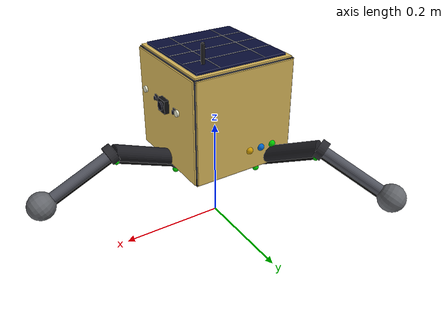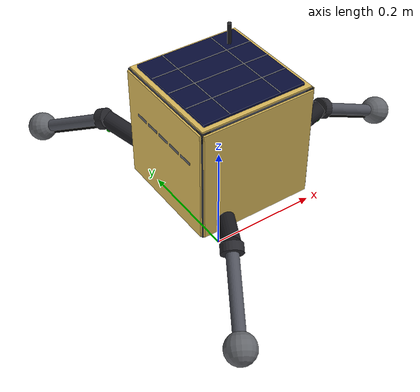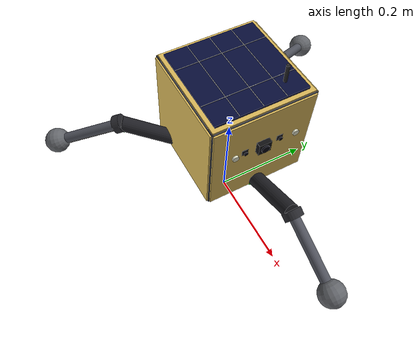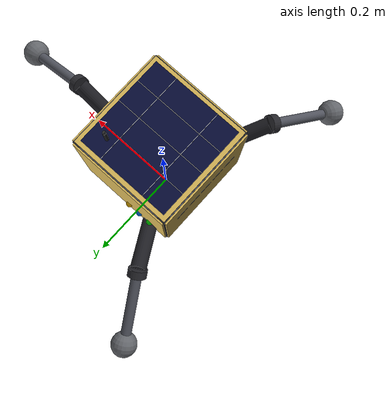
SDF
<sdf version="1.8">
 <model name="spacehopper">
  <allow_auto_disable>false</allow_auto_disable>
  <link name="base_link">
   <pose>0 0 0.25 0 0 0</pose>
   <inertial>
    <mass>1.35</mass>
    <inertia>
     <ixx>0.009000</ixx>
     <ixy>0</ixy>
     <ixz>0</ixz>
     <iyy>0.009000</iyy>
     <iyz>0</iyz>
     <izz>0.009000</izz>
    </inertia>
   </inertial>
   <visual name="hull_visual">
    <geometry><box><size>0.2 0.2 0.2</size></box></geometry>
    <material>
     <ambient>0.3 0.31 0.35 1</ambient>
     <diffuse>0.3 0.31 0.35 1</diffuse>
     <specular>0.5 0.5 0.5 1</specular>
     <pbr><metal><metalness>0.75</metalness><roughness>0.28</roughness></metal></pbr>
    </material>
   </visual>
   <visual name="seam_front">
    <pose>0.0995 0 0.02 0 0 0</pose>
    <geometry><box><size>0.001 0.196 0.003</size></box></geometry>
    <material>
     <ambient>0.04 0.04 0.045 1</ambient>
     <diffuse>0.04 0.04 0.045 1</diffuse>
     <specular>0.5 0.5 0.5 1</specular>
     <pbr><metal><metalness>0.3</metalness><roughness>0.85</roughness></metal></pbr>
    </material>
   </visual>
   <visual name="seam_back">
    <pose>-0.0995 0 0.02 0 0 0</pose>
    <geometry><box><size>0.001 0.196 0.003</size></box></geometry>
    <material>
     <ambient>0.04 0.04 0.045 1</ambient>
     <diffuse>0.04 0.04 0.045 1</diffuse>
     <specular>0.5 0.5 0.5 1</specular>
     <pbr><metal><metalness>0.3</metalness><roughness>0.85</roughness></metal></pbr>
    </material>
   </visual>
   <visual name="seam_left">
    <pose>0 0.0995 0.02 0 0 0</pose>
    <geometry><box><size>0.196 0.001 0.003</size></box></geometry>
    <material>
     <ambient>0.04 0.04 0.045 1</ambient>
     <diffuse>0.04 0.04 0.045 1</diffuse>
     <specular>0.5 0.5 0.5 1</specular>
     <pbr><metal><metalness>0.3</metalness><roughness>0.85</roughness></metal></pbr>
    </material>
   </visual>
   <visual name="seam_right">
    <pose>0 -0.0995 0.02 0 0 0</pose>
    <geometry><box><size>0.196 0.001 0.003</size></box></geometry>
    <material>
     <ambient>0.04 0.04 0.045 1</ambient>
     <diffuse>0.04 0.04 0.045 1</diffuse>
     <specular>0.5 0.5 0.5 1</specular>
     <pbr><metal><metalness>0.3</metalness><roughness>0.85</roughness></metal></pbr>
    </material>
   </visual>
   <visual name="hull_bolt_0">
    <pose>0.099 0.085 0.085 0 1.5708 0</pose>
    <geometry><cylinder><radius>0.003</radius><length>0.004</length></cylinder></geometry>
    <material>
     <ambient>0.16 0.16 0.18 1</ambient>
     <diffuse>0.16 0.16 0.18 1</diffuse>
     <specular>0.5 0.5 0.5 1</specular>
     <pbr><metal><metalness>0.85</metalness><roughness>0.25</roughness></metal></pbr>
    </material>
   </visual>
   <visual name="hull_bolt_1">
    <pose>0.099 -0.085 0.085 0 1.5708 0</pose>
    <geometry><cylinder><radius>0.003</radius><length>0.004</length></cylinder></geometry>
    <material>
     <ambient>0.16 0.16 0.18 1</ambient>
     <diffuse>0.16 0.16 0.18 1</diffuse>
     <specular>0.5 0.5 0.5 1</specular>
     <pbr><metal><metalness>0.85</metalness><roughness>0.25</roughness></metal></pbr>
    </material>
   </visual>
   <visual name="hull_bolt_2">
    <pose>0.099 0.085 -0.085 0 1.5708 0</pose>
    <geometry><cylinder><radius>0.003</radius><length>0.004</length></cylinder></geometry>
    <material>
     <ambient>0.16 0.16 0.18 1</ambient>
     <diffuse>0.16 0.16 0.18 1</diffuse>
     <specular>0.5 0.5 0.5 1</specular>
     <pbr><metal><metalness>0.85</metalness><roughness>0.25</roughness></metal></pbr>
    </material>
   </visual>
   <visual name="hull_bolt_3">
    <pose>0.099 -0.085 -0.085 0 1.5708 0</pose>
    <geometry><cylinder><radius>0.003</radius><length>0.004</length></cylinder></geometry>
    <material>
     <ambient>0.16 0.16 0.18 1</ambient>
     <diffuse>0.16 0.16 0.18 1</diffuse>
     <specular>0.5 0.5 0.5 1</specular>
     <pbr><metal><metalness>0.85</metalness><roughness>0.25</roughness></metal></pbr>
    </material>
   </visual>
   <visual name="hull_bolt_4">
    <pose>0.099 0 0.085 0 1.5708 0</pose>
    <geometry><cylinder><radius>0.003</radius><length>0.004</length></cylinder></geometry>
    <material>
     <ambient>0.16 0.16 0.18 1</ambient>
     <diffuse>0.16 0.16 0.18 1</diffuse>
     <specular>0.5 0.5 0.5 1</specular>
     <pbr><metal><metalness>0.85</metalness><roughness>0.25</roughness></metal></pbr>
    </material>
   </visual>
   <visual name="hull_bolt_5">
    <pose>0.099 0 -0.085 0 1.5708 0</pose>
    <geometry><cylinder><radius>0.003</radius><length>0.004</length></cylinder></geometry>
    <material>
     <ambient>0.16 0.16 0.18 1</ambient>
     <diffuse>0.16 0.16 0.18 1</diffuse>
     <specular>0.5 0.5 0.5 1</specular>
     <pbr><metal><metalness>0.85</metalness><roughness>0.25</roughness></metal></pbr>
    </material>
   </visual>
   <visual name="mli_top">
    <pose>0 0 0.1015 0 0 0</pose>
    <geometry><box><size>0.196 0.196 0.003</size></box></geometry>
    <material>
     <ambient>0.85 0.72 0.35 1</ambient>
     <diffuse>0.85 0.72 0.35 1</diffuse>
     <specular>0.5 0.5 0.5 1</specular>
     <pbr><metal><metalness>0.9</metalness><roughness>0.15</roughness></metal></pbr>
    </material>
   </visual>
   <visual name="mli_bottom">
    <pose>0 0 -0.1015 0 0 0</pose>
    <geometry><box><size>0.196 0.196 0.003</size></box></geometry>
    <material>
     <ambient>0.85 0.72 0.35 1</ambient>
     <diffuse>0.85 0.72 0.35 1</diffuse>
     <specular>0.5 0.5 0.5 1</specular>
     <pbr><metal><metalness>0.9</metalness><roughness>0.15</roughness></metal></pbr>
    </material>
   </visual>
   <visual name="mli_front">
    <pose>0.1015 0 0 0 0 0</pose>
    <geometry><box><size>0.003 0.196 0.196</size></box></geometry>
    <material>
     <ambient>0.85 0.72 0.35 1</ambient>
     <diffuse>0.85 0.72 0.35 1</diffuse>
     <specular>0.5 0.5 0.5 1</specular>
     <pbr><metal><metalness>0.9</metalness><roughness>0.15</roughness></metal></pbr>
    </material>
   </visual>
   <visual name="mli_back">
    <pose>-0.1015 0 0 0 0 0</pose>
    <geometry><box><size>0.003 0.196 0.196</size></box></geometry>
    <material>
     <ambient>0.85 0.72 0.35 1</ambient>
     <diffuse>0.85 0.72 0.35 1</diffuse>
     <specular>0.5 0.5 0.5 1</specular>
     <pbr><metal><metalness>0.9</metalness><roughness>0.15</roughness></metal></pbr>
    </material>
   </visual>
   <visual name="mli_left">
    <pose>0 0.1015 0 0 0 0</pose>
    <geometry><box><size>0.196 0.003 0.196</size></box></geometry>
    <material>
     <ambient>0.85 0.72 0.35 1</ambient>
     <diffuse>0.85 0.72 0.35 1</diffuse>
     <specular>0.5 0.5 0.5 1</specular>
     <pbr><metal><metalness>0.9</metalness><roughness>0.15</roughness></metal></pbr>
    </material>
   </visual>
   <visual name="mli_right">
    <pose>0 -0.1015 0 0 0 0</pose>
    <geometry><box><size>0.196 0.003 0.196</size></box></geometry>
    <material>
     <ambient>0.85 0.72 0.35 1</ambient>
     <diffuse>0.85 0.72 0.35 1</diffuse>
     <specular>0.5 0.5 0.5 1</specular>
     <pbr><metal><metalness>0.9</metalness><roughness>0.15</roughness></metal></pbr>
    </material>
   </visual>
   <visual name="bracket_0">
    <pose>-0.0925 -0.0925 -0.0925 0 0 0</pose>
    <geometry><box><size>0.015 0.015 0.015</size></box></geometry>
    <material>
     <ambient>0.16 0.16 0.18 1</ambient>
     <diffuse>0.16 0.16 0.18 1</diffuse>
     <specular>0.5 0.5 0.5 1</specular>
     <pbr><metal><metalness>0.8</metalness><roughness>0.3</roughness></metal></pbr>
    </material>
   </visual>
   <visual name="bracket_1">
    <pose>-0.0925 -0.0925 0.0925 0 0 0</pose>
    <geometry><box><size>0.015 0.015 0.015</size></box></geometry>
    <material>
     <ambient>0.16 0.16 0.18 1</ambient>
     <diffuse>0.16 0.16 0.18 1</diffuse>
     <specular>0.5 0.5 0.5 1</specular>
     <pbr><metal><metalness>0.8</metalness><roughness>0.3</roughness></metal></pbr>
    </material>
   </visual>
   <visual name="bracket_2">
    <pose>-0.0925 0.0925 -0.0925 0 0 0</pose>
    <geometry><box><size>0.015 0.015 0.015</size></box></geometry>
    <material>
     <ambient>0.16 0.16 0.18 1</ambient>
     <diffuse>0.16 0.16 0.18 1</diffuse>
     <specular>0.5 0.5 0.5 1</specular>
     <pbr><metal><metalness>0.8</metalness><roughness>0.3</roughness></metal></pbr>
    </material>
   </visual>
   <visual name="bracket_3">
    <pose>-0.0925 0.0925 0.0925 0 0 0</pose>
    <geometry><box><size>0.015 0.015 0.015</size></box></geometry>
    <material>
     <ambient>0.16 0.16 0.18 1</ambient>
     <diffuse>0.16 0.16 0.18 1</diffuse>
     <specular>0.5 0.5 0.5 1</specular>
     <pbr><metal><metalness>0.8</metalness><roughness>0.3</roughness></metal></pbr>
    </material>
   </visual>
   <visual name="bracket_4">
    <pose>0.0925 -0.0925 -0.0925 0 0 0</pose>
    <geometry><box><size>0.015 0.015 0.015</size></box></geometry>
    <material>
     <ambient>0.16 0.16 0.18 1</ambient>
     <diffuse>0.16 0.16 0.18 1</diffuse>
     <specular>0.5 0.5 0.5 1</specular>
     <pbr><metal><metalness>0.8</metalness><roughness>0.3</roughness></metal></pbr>
    </material>
   </visual>
   <visual name="bracket_5">
    <pose>0.0925 -0.0925 0.0925 0 0 0</pose>
    <geometry><box><size>0.015 0.015 0.015</size></box></geometry>
    <material>
     <ambient>0.16 0.16 0.18 1</ambient>
     <diffuse>0.16 0.16 0.18 1</diffuse>
     <specular>0.5 0.5 0.5 1</specular>
     <pbr><metal><metalness>0.8</metalness><roughness>0.3</roughness></metal></pbr>
    </material>
   </visual>
   <visual name="bracket_6">
    <pose>0.0925 0.0925 -0.0925 0 0 0</pose>
    <geometry><box><size>0.015 0.015 0.015</size></box></geometry>
    <material>
     <ambient>0.16 0.16 0.18 1</ambient>
     <diffuse>0.16 0.16 0.18 1</diffuse>
     <specular>0.5 0.5 0.5 1</specular>
     <pbr><metal><metalness>0.8</metalness><roughness>0.3</roughness></metal></pbr>
    </material>
   </visual>
   <visual name="bracket_7">
    <pose>0.0925 0.0925 0.0925 0 0 0</pose>
    <geometry><box><size>0.015 0.015 0.015</size></box></geometry>
    <material>
     <ambient>0.16 0.16 0.18 1</ambient>
     <diffuse>0.16 0.16 0.18 1</diffuse>
     <specular>0.5 0.5 0.5 1</specular>
     <pbr><metal><metalness>0.8</metalness><roughness>0.3</roughness></metal></pbr>
    </material>
   </visual>
   <visual name="antenna_mast">
    <pose>0.06 0.06 0.122 0 0 0</pose>
    <geometry><cylinder><radius>0.0035</radius><length>0.044</length></cylinder></geometry>
    <material>
     <ambient>0.12 0.12 0.13 1</ambient>
     <diffuse>0.12 0.12 0.13 1</diffuse>
     <specular>0.5 0.5 0.5 1</specular>
     <pbr><metal><metalness>0.7</metalness><roughness>0.35</roughness></metal></pbr>
    </material>
   </visual>
   <visual name="antenna_base_collar">
    <pose>0.06 0.06 0.101 0 0 0</pose>
    <geometry><cylinder><radius>0.008</radius><length>0.006</length></cylinder></geometry>
    <material>
     <ambient>0.16 0.16 0.18 1</ambient>
     <diffuse>0.16 0.16 0.18 1</diffuse>
     <specular>0.5 0.5 0.5 1</specular>
     <pbr><metal><metalness>0.8</metalness><roughness>0.3</roughness></metal></pbr>
    </material>
   </visual>
   <visual name="antenna_tip">
    <pose>0.06 0.06 0.1445 0 0 0</pose>
    <geometry><cylinder><radius>0.0015</radius><length>0.001</length></cylinder></geometry>
    <material>
     <ambient>0.05 0.05 0.05 1</ambient>
     <diffuse>0.05 0.05 0.05 1</diffuse>
     <specular>0.5 0.5 0.5 1</specular>
     <pbr><metal><metalness>0.6</metalness><roughness>0.5</roughness></metal></pbr>
    </material>
   </visual>
   <visual name="antenna_patch">
    <pose>-0.04 -0.06 0.101 0 0 0.4</pose>
    <geometry><box><size>0.03 0.03 0.003</size></box></geometry>
    <material>
     <ambient>0.5 0.51 0.55 1</ambient>
     <diffuse>0.5 0.51 0.55 1</diffuse>
     <specular>0.5 0.5 0.5 1</specular>
     <pbr><metal><metalness>0.6</metalness><roughness>0.35</roughness></metal></pbr>
    </material>
   </visual>
   <visual name="antenna_patch_frame">
    <pose>-0.04 -0.06 0.0995 0 0 0.4</pose>
    <geometry><box><size>0.034 0.034 0.001</size></box></geometry>
    <material>
     <ambient>0.16 0.16 0.18 1</ambient>
     <diffuse>0.16 0.16 0.18 1</diffuse>
     <specular>0.5 0.5 0.5 1</specular>
     <pbr><metal><metalness>0.75</metalness><roughness>0.3</roughness></metal></pbr>
    </material>
   </visual>
   <visual name="comms_led">
    <pose>0.06 0.048 0.101 0 0 0</pose>
    <geometry><sphere><radius>0.005</radius></sphere></geometry>
    <material>
     <ambient>0.0 0.4 0.8 1</ambient>
     <diffuse>0.0 0.4 0.8 1</diffuse>
     <specular>0.3 0.3 0.3 1</specular>
     <emissive>0.0 0.5 1.0 1</emissive>
    </material>
   </visual>
   <light type="point" name="comms_led_light">
    <pose>0.06 0.048 0.101 0 0 0</pose>
    <diffuse>0.0 0.5 1.0 1</diffuse>
    <specular>0.0 0.5 1.0 1</specular>
    <intensity>3.0</intensity>
    <attenuation>
     <range>0.05</range>
     <constant>0.15</constant>
     <linear>2.5</linear>
     <quadratic>6</quadratic>
    </attenuation>
    <cast_shadows>false</cast_shadows>
    <visualize>false</visualize>
   </light>
   <light type="spot" name="headlight_left">
    <pose>0.11 0.06 0.03 0 0 0</pose>
    <diffuse>1.0 0.98 0.9 1</diffuse>
    <specular>1.0 0.98 0.9 1</specular>
    <intensity>6.0</intensity>
    <direction>1 0 0</direction>
    <attenuation>
     <range>1.2</range>
     <constant>0.1</constant>
     <linear>1.0</linear>
     <quadratic>1.5</quadratic>
    </attenuation>
    <spot><inner_angle>0.4</inner_angle><outer_angle>0.7</outer_angle><falloff>1.0</falloff></spot>
    <cast_shadows>false</cast_shadows>
    <visualize>false</visualize>
   </light>
   <light type="spot" name="headlight_right">
    <pose>0.11 -0.06 0.03 0 0 0</pose>
    <diffuse>1.0 0.98 0.9 1</diffuse>
    <specular>1.0 0.98 0.9 1</specular>
    <intensity>6.0</intensity>
    <direction>1 0 0</direction>
    <attenuation>
     <range>1.2</range>
     <constant>0.1</constant>
     <linear>1.0</linear>
     <quadratic>1.5</quadratic>
    </attenuation>
    <spot><inner_angle>0.4</inner_angle><outer_angle>0.7</outer_angle><falloff>1.0</falloff></spot>
    <cast_shadows>false</cast_shadows>
    <visualize>false</visualize>
   </light>
   <visual name="headlight_left_lens">
    <pose>0.113 0.06 0.03 0 1.5708 0</pose>
    <geometry><cylinder><radius>0.006</radius><length>0.004</length></cylinder></geometry>
    <material>
     <ambient>0.9 0.9 0.8 1</ambient>
     <diffuse>0.9 0.9 0.8 1</diffuse>
     <specular>0.3 0.3 0.3 1</specular>
     <emissive>1.0 1.0 0.9 1</emissive>
    </material>
   </visual>
   <visual name="headlight_right_lens">
    <pose>0.113 -0.06 0.03 0 1.5708 0</pose>
    <geometry><cylinder><radius>0.006</radius><length>0.004</length></cylinder></geometry>
    <material>
     <ambient>0.9 0.9 0.8 1</ambient>
     <diffuse>0.9 0.9 0.8 1</diffuse>
     <specular>0.3 0.3 0.3 1</specular>
     <emissive>1.0 1.0 0.9 1</emissive>
    </material>
   </visual>
   <visual name="camera_body">
    <pose>0.105 0 0.02 0 0 0</pose>
    <geometry><box><size>0.015 0.025 0.025</size></box></geometry>
    <material>
     <ambient>0.06 0.06 0.07 1</ambient>
     <diffuse>0.06 0.06 0.07 1</diffuse>
     <specular>0.5 0.5 0.5 1</specular>
     <pbr><metal><metalness>0.55</metalness><roughness>0.45</roughness></metal></pbr>
    </material>
   </visual>
   <visual name="camera_lens">
    <pose>0.114 0 0.02 0 1.5708 0</pose>
    <geometry><cylinder><radius>0.008</radius><length>0.003</length></cylinder></geometry>
    <material>
     <ambient>0.02 0.02 0.06 1</ambient>
     <diffuse>0.02 0.02 0.06 1</diffuse>
     <specular>0.5 0.5 0.5 1</specular>
     <pbr><metal><metalness>0.9</metalness><roughness>0.1</roughness></metal></pbr>
    </material>
   </visual>
   <visual name="sci_camera_body">
    <pose>0 -0.04 -0.105 0 0 0</pose>
    <geometry><box><size>0.02 0.02 0.015</size></box></geometry>
    <material>
     <ambient>0.06 0.06 0.07 1</ambient>
     <diffuse>0.06 0.06 0.07 1</diffuse>
     <specular>0.5 0.5 0.5 1</specular>
     <pbr><metal><metalness>0.55</metalness><roughness>0.45</roughness></metal></pbr>
    </material>
   </visual>
   <visual name="sci_camera_lens">
    <pose>0 -0.04 -0.114 0 0 0</pose>
    <geometry><cylinder><radius>0.007</radius><length>0.003</length></cylinder></geometry>
    <material>
     <ambient>0.02 0.02 0.06 1</ambient>
     <diffuse>0.02 0.02 0.06 1</diffuse>
     <specular>0.5 0.5 0.5 1</specular>
     <pbr><metal><metalness>0.9</metalness><roughness>0.1</roughness></metal></pbr>
    </material>
   </visual>
   <visual name="hazcam_left_body">
    <pose>0.100 0.035 0.02 0 0 0</pose>
    <geometry><box><size>0.008 0.012 0.012</size></box></geometry>
    <material>
     <ambient>0.06 0.06 0.07 1</ambient>
     <diffuse>0.06 0.06 0.07 1</diffuse>
     <specular>0.5 0.5 0.5 1</specular>
     <pbr><metal><metalness>0.55</metalness><roughness>0.45</roughness></metal></pbr>
    </material>
   </visual>
   <visual name="hazcam_left_lens">
    <pose>0.107 0.035 0.02 0 1.5708 0</pose>
    <geometry><cylinder><radius>0.004</radius><length>0.002</length></cylinder></geometry>
    <material>
     <ambient>0.02 0.02 0.06 1</ambient>
     <diffuse>0.02 0.02 0.06 1</diffuse>
     <specular>0.5 0.5 0.5 1</specular>
     <pbr><metal><metalness>0.9</metalness><roughness>0.1</roughness></metal></pbr>
    </material>
   </visual>
   <visual name="hazcam_right_body">
    <pose>0.100 -0.035 0.02 0 0 0</pose>
    <geometry><box><size>0.008 0.012 0.012</size></box></geometry>
    <material>
     <ambient>0.06 0.06 0.07 1</ambient>
     <diffuse>0.06 0.06 0.07 1</diffuse>
     <specular>0.5 0.5 0.5 1</specular>
     <pbr><metal><metalness>0.55</metalness><roughness>0.45</roughness></metal></pbr>
    </material>
   </visual>
   <visual name="hazcam_right_lens">
    <pose>0.107 -0.035 0.02 0 1.5708 0</pose>
    <geometry><cylinder><radius>0.004</radius><length>0.002</length></cylinder></geometry>
    <material>
     <ambient>0.02 0.02 0.06 1</ambient>
     <diffuse>0.02 0.02 0.06 1</diffuse>
     <specular>0.5 0.5 0.5 1</specular>
     <pbr><metal><metalness>0.9</metalness><roughness>0.1</roughness></metal></pbr>
    </material>
   </visual>
   <visual name="louver_0">
    <pose>-0.102 -0.06 0.03 0 0 0</pose>
    <geometry><box><size>0.003 0.025 0.005</size></box></geometry>
    <material>
     <ambient>0.4 0.41 0.44 1</ambient>
     <diffuse>0.4 0.41 0.44 1</diffuse>
     <specular>0.5 0.5 0.5 1</specular>
     <pbr><metal><metalness>0.7</metalness><roughness>0.3</roughness></metal></pbr>
    </material>
   </visual>
   <visual name="louver_1">
    <pose>-0.102 -0.03 0.03 0 0 0</pose>
    <geometry><box><size>0.003 0.025 0.005</size></box></geometry>
    <material>
     <ambient>0.4 0.41 0.44 1</ambient>
     <diffuse>0.4 0.41 0.44 1</diffuse>
     <specular>0.5 0.5 0.5 1</specular>
     <pbr><metal><metalness>0.7</metalness><roughness>0.3</roughness></metal></pbr>
    </material>
   </visual>
   <visual name="louver_2">
    <pose>-0.102 0.0 0.03 0 0 0</pose>
    <geometry><box><size>0.003 0.025 0.005</size></box></geometry>
    <material>
     <ambient>0.4 0.41 0.44 1</ambient>
     <diffuse>0.4 0.41 0.44 1</diffuse>
     <specular>0.5 0.5 0.5 1</specular>
     <pbr><metal><metalness>0.7</metalness><roughness>0.3</roughness></metal></pbr>
    </material>
   </visual>
   <visual name="louver_3">
    <pose>-0.102 0.03 0.03 0 0 0</pose>
    <geometry><box><size>0.003 0.025 0.005</size></box></geometry>
    <material>
     <ambient>0.4 0.41 0.44 1</ambient>
     <diffuse>0.4 0.41 0.44 1</diffuse>
     <specular>0.5 0.5 0.5 1</specular>
     <pbr><metal><metalness>0.7</metalness><roughness>0.3</roughness></metal></pbr>
    </material>
   </visual>
   <visual name="louver_4">
    <pose>-0.102 0.06 0.03 0 0 0</pose>
    <geometry><box><size>0.003 0.025 0.005</size></box></geometry>
    <material>
     <ambient>0.4 0.41 0.44 1</ambient>
     <diffuse>0.4 0.41 0.44 1</diffuse>
     <specular>0.5 0.5 0.5 1</specular>
     <pbr><metal><metalness>0.7</metalness><roughness>0.3</roughness></metal></pbr>
    </material>
   </visual>
   <visual name="led_0">
    <pose>-0.06 0.102 -0.06 0 0 0</pose>
    <geometry><sphere><radius>0.007</radius></sphere></geometry>
    <material>
     <ambient>0.0 0.8 0.0 1</ambient>
     <diffuse>0.0 0.8 0.0 1</diffuse>
     <specular>0.3 0.3 0.3 1</specular>
     <emissive>0.0 1.0 0.0 1</emissive>
    </material>
   </visual>
   <light type="point" name="led_0_light">
    <pose>-0.06 0.102 -0.06 0 0 0</pose>
    <diffuse>0.0 1.0 0.0 1</diffuse>
    <specular>0.0 1.0 0.0 1</specular>
    <intensity>3.0</intensity>
    <attenuation>
     <range>0.12</range>
     <constant>0.15</constant>
     <linear>2.5</linear>
     <quadratic>6</quadratic>
    </attenuation>
    <cast_shadows>false</cast_shadows>
    <visualize>false</visualize>
   </light>
   <visual name="led_1">
    <pose>-0.034999999999999996 0.102 -0.06 0 0 0</pose>
    <geometry><sphere><radius>0.007</radius></sphere></geometry>
    <material>
     <ambient>0.0 0.4 0.8 1</ambient>
     <diffuse>0.0 0.4 0.8 1</diffuse>
     <specular>0.3 0.3 0.3 1</specular>
     <emissive>0.0 0.5 1.0 1</emissive>
    </material>
   </visual>
   <light type="point" name="led_1_light">
    <pose>-0.034999999999999996 0.102 -0.06 0 0 0</pose>
    <diffuse>0.0 0.5 1.0 1</diffuse>
    <specular>0.0 0.5 1.0 1</specular>
    <intensity>3.0</intensity>
    <attenuation>
     <range>0.12</range>
     <constant>0.15</constant>
     <linear>2.5</linear>
     <quadratic>6</quadratic>
    </attenuation>
    <cast_shadows>false</cast_shadows>
    <visualize>false</visualize>
   </light>
   <visual name="led_2">
    <pose>-0.009999999999999995 0.102 -0.06 0 0 0</pose>
    <geometry><sphere><radius>0.007</radius></sphere></geometry>
    <material>
     <ambient>0.8 0.6 0.0 1</ambient>
     <diffuse>0.8 0.6 0.0 1</diffuse>
     <specular>0.3 0.3 0.3 1</specular>
     <emissive>1.0 0.8 0.0 1</emissive>
    </material>
   </visual>
   <light type="point" name="led_2_light">
    <pose>-0.009999999999999995 0.102 -0.06 0 0 0</pose>
    <diffuse>1.0 0.8 0.0 1</diffuse>
    <specular>1.0 0.8 0.0 1</specular>
    <intensity>3.0</intensity>
    <attenuation>
     <range>0.12</range>
     <constant>0.15</constant>
     <linear>2.5</linear>
     <quadratic>6</quadratic>
    </attenuation>
    <cast_shadows>false</cast_shadows>
    <visualize>false</visualize>
   </light>
   <visual name="rw_housing_x">
    <pose>0 0 0 0 1.5707963267948966 0</pose>
    <geometry><cylinder><radius>0.065</radius><length>0.005</length></cylinder></geometry>
    <material>
     <ambient>0.2 0.2 0.22 1</ambient>
     <diffuse>0.2 0.2 0.22 1</diffuse>
     <specular>0.5 0.5 0.5 1</specular>
     <pbr><metal><metalness>0.75</metalness><roughness>0.3</roughness></metal></pbr>
    </material>
   </visual>
   <visual name="rw_housing_y">
    <pose>0 0 0 1.5707963267948966 0 0</pose>
    <geometry><cylinder><radius>0.065</radius><length>0.005</length></cylinder></geometry>
    <material>
     <ambient>0.2 0.2 0.22 1</ambient>
     <diffuse>0.2 0.2 0.22 1</diffuse>
     <specular>0.5 0.5 0.5 1</specular>
     <pbr><metal><metalness>0.75</metalness><roughness>0.3</roughness></metal></pbr>
    </material>
   </visual>
   <visual name="rw_housing_z">
    <geometry><cylinder><radius>0.065</radius><length>0.005</length></cylinder></geometry>
    <material>
     <ambient>0.2 0.2 0.22 1</ambient>
     <diffuse>0.2 0.2 0.22 1</diffuse>
     <specular>0.5 0.5 0.5 1</specular>
     <pbr><metal><metalness>0.75</metalness><roughness>0.3</roughness></metal></pbr>
    </material>
   </visual>
   <visual name="rw_led_x">
    <pose>0.066 0 0 0 1.5708 0</pose>
    <geometry><sphere><radius>0.006</radius></sphere></geometry>
    <material>
     <ambient>0.0 0.5 1.0 1</ambient>
     <diffuse>0.0 0.5 1.0 1</diffuse>
     <specular>0.3 0.3 0.3 1</specular>
     <emissive>0.0 0.5 1.0 1</emissive>
    </material>
   </visual>
   <light type="point" name="rw_led_x_light">
    <pose>0.066 0 0 0 1.5708 0</pose>
    <diffuse>0.0 0.5 1.0 1</diffuse>
    <specular>0.0 0.5 1.0 1</specular>
    <intensity>3.0</intensity>
    <attenuation>
     <range>0.05</range>
     <constant>0.15</constant>
     <linear>2.5</linear>
     <quadratic>6</quadratic>
    </attenuation>
    <cast_shadows>false</cast_shadows>
    <visualize>false</visualize>
   </light>
   <visual name="rw_led_y">
    <pose>0 0.066 0 1.5708 0 0</pose>
    <geometry><sphere><radius>0.006</radius></sphere></geometry>
    <material>
     <ambient>0.0 0.5 1.0 1</ambient>
     <diffuse>0.0 0.5 1.0 1</diffuse>
     <specular>0.3 0.3 0.3 1</specular>
     <emissive>0.0 0.5 1.0 1</emissive>
    </material>
   </visual>
   <light type="point" name="rw_led_y_light">
    <pose>0 0.066 0 1.5708 0 0</pose>
    <diffuse>0.0 0.5 1.0 1</diffuse>
    <specular>0.0 0.5 1.0 1</specular>
    <intensity>3.0</intensity>
    <attenuation>
     <range>0.05</range>
     <constant>0.15</constant>
     <linear>2.5</linear>
     <quadratic>6</quadratic>
    </attenuation>
    <cast_shadows>false</cast_shadows>
    <visualize>false</visualize>
   </light>
   <visual name="rw_led_z">
    <pose>0 0 0.066 0 0 0</pose>
    <geometry><sphere><radius>0.006</radius></sphere></geometry>
    <material>
     <ambient>0.0 0.5 1.0 1</ambient>
     <diffuse>0.0 0.5 1.0 1</diffuse>
     <specular>0.3 0.3 0.3 1</specular>
     <emissive>0.0 0.5 1.0 1</emissive>
    </material>
   </visual>
   <light type="point" name="rw_led_z_light">
    <pose>0 0 0.066 0 0 0</pose>
    <diffuse>0.0 0.5 1.0 1</diffuse>
    <specular>0.0 0.5 1.0 1</specular>
    <intensity>3.0</intensity>
    <attenuation>
     <range>0.05</range>
     <constant>0.15</constant>
     <linear>2.5</linear>
     <quadratic>6</quadratic>
    </attenuation>
    <cast_shadows>false</cast_shadows>
    <visualize>false</visualize>
   </light>
   <visual name="drill_turret">
    <pose>0 0 -0.1125 0 0 0</pose>
    <geometry><cylinder><radius>0.028</radius><length>0.035</length></cylinder></geometry>
    <material>
     <ambient>0.16 0.16 0.18 1</ambient>
     <diffuse>0.16 0.16 0.18 1</diffuse>
     <specular>0.5 0.5 0.5 1</specular>
     <pbr><metal><metalness>0.75</metalness><roughness>0.35</roughness></metal></pbr>
    </material>
   </visual>
   <visual name="drill_turret_plate">
    <pose>0 0 -0.10200000000000001 0 0 0</pose>
    <geometry><box><size>0.06 0.06 0.004</size></box></geometry>
    <material>
     <ambient>0.25 0.25 0.28 1</ambient>
     <diffuse>0.25 0.25 0.28 1</diffuse>
     <specular>0.5 0.5 0.5 1</specular>
     <pbr><metal><metalness>0.6</metalness><roughness>0.4</roughness></metal></pbr>
    </material>
   </visual>
   <visual name="drill_led">
    <pose>0.024 0.024 -0.10300000000000001 0 0 0</pose>
    <geometry><sphere><radius>0.006</radius></sphere></geometry>
    <material>
     <ambient>0.8 0.6 0.0 1</ambient>
     <diffuse>0.8 0.6 0.0 1</diffuse>
     <specular>0.3 0.3 0.3 1</specular>
     <emissive>1.0 0.8 0.0 1</emissive>
    </material>
   </visual>
   <light type="point" name="drill_led_light">
    <pose>0.024 0.024 -0.10300000000000001 0 0 0</pose>
    <diffuse>1.0 0.8 0.0 1</diffuse>
    <specular>1.0 0.8 0.0 1</specular>
    <intensity>3.0</intensity>
    <attenuation>
     <range>0.05</range>
     <constant>0.15</constant>
     <linear>2.5</linear>
     <quadratic>6</quadratic>
    </attenuation>
    <cast_shadows>false</cast_shadows>
    <visualize>false</visualize>
   </light>
   <collision name="collision"><geometry><box><size>0.2 0.2 0.2</size></box></geometry></collision>
   <sensor name="imu_sensor" type="imu">
    <always_on>1</always_on>
    <update_rate>100</update_rate>
    <visualize>true</visualize>
   </sensor>
  </link>
  <plugin filename="gz-sim-imu-system" name="gz::sim::systems::Imu"/>
  <plugin filename="gz-sim-odometry-publisher-system" name="gz::sim::systems::OdometryPublisher">
   <odom_frame>spacehopper/odom</odom_frame>
   <robot_base_frame>spacehopper/base</robot_base_frame>
   <odom_publish_frequency>20</odom_publish_frequency>
   <dimensions>3</dimensions>
  </plugin>
  <link name="solar_panel">
   <pose>0 0 0.355 0 0 0</pose>
   <inertial>
    <mass>0.15</mass>
    <inertia>
     <ixx>0.000405</ixx>
     <ixy>0</ixy>
     <ixz>0</ixz>
     <iyy>0.000405</iyy>
     <iyz>0</iyz>
     <izz>0.000810</izz>
    </inertia>
   </inertial>
   <visual name="panel_surface">
    <geometry><box><size>0.18 0.18 0.005</size></box></geometry>
    <material>
     <ambient>0.03 0.05 0.22 1</ambient>
     <diffuse>0.03 0.05 0.22 1</diffuse>
     <specular>0.5 0.5 0.5 1</specular>
     <pbr><metal><metalness>0.7</metalness><roughness>0.15</roughness></metal></pbr>
    </material>
   </visual>
   <visual name="cell_grid_h1">
    <pose>0 0 0.003 0 0 0</pose>
    <geometry><box><size>0.18 0.001 0.001</size></box></geometry>
    <material>
     <ambient>0.75 0.76 0.78 1</ambient>
     <diffuse>0.75 0.76 0.78 1</diffuse>
     <specular>0.5 0.5 0.5 1</specular>
     <pbr><metal><metalness>0.9</metalness><roughness>0.2</roughness></metal></pbr>
    </material>
   </visual>
   <visual name="cell_grid_h2">
    <pose>0 0.045 0.003 0 0 0</pose>
    <geometry><box><size>0.18 0.001 0.001</size></box></geometry>
    <material>
     <ambient>0.75 0.76 0.78 1</ambient>
     <diffuse>0.75 0.76 0.78 1</diffuse>
     <specular>0.5 0.5 0.5 1</specular>
     <pbr><metal><metalness>0.9</metalness><roughness>0.2</roughness></metal></pbr>
    </material>
   </visual>
   <visual name="cell_grid_h3">
    <pose>0 -0.045 0.003 0 0 0</pose>
    <geometry><box><size>0.18 0.001 0.001</size></box></geometry>
    <material>
     <ambient>0.75 0.76 0.78 1</ambient>
     <diffuse>0.75 0.76 0.78 1</diffuse>
     <specular>0.5 0.5 0.5 1</specular>
     <pbr><metal><metalness>0.9</metalness><roughness>0.2</roughness></metal></pbr>
    </material>
   </visual>
   <visual name="cell_grid_v1">
    <pose>0.045 0 0.003 0 0 0</pose>
    <geometry><box><size>0.001 0.18 0.001</size></box></geometry>
    <material>
     <ambient>0.75 0.76 0.78 1</ambient>
     <diffuse>0.75 0.76 0.78 1</diffuse>
     <specular>0.5 0.5 0.5 1</specular>
     <pbr><metal><metalness>0.9</metalness><roughness>0.2</roughness></metal></pbr>
    </material>
   </visual>
   <visual name="cell_grid_v2">
    <pose>-0.045 0 0.003 0 0 0</pose>
    <geometry><box><size>0.001 0.18 0.001</size></box></geometry>
    <material>
     <ambient>0.75 0.76 0.78 1</ambient>
     <diffuse>0.75 0.76 0.78 1</diffuse>
     <specular>0.5 0.5 0.5 1</specular>
     <pbr><metal><metalness>0.9</metalness><roughness>0.2</roughness></metal></pbr>
    </material>
   </visual>
  </link>
  <joint name="solar_panel_joint" type="fixed"><parent>base_link</parent><child>solar_panel</child></joint>
  <link name="rw_x">
   <pose>0 0 0.25 0 1.5707963267948966 0</pose>
   <inertial>
    <mass>0.15</mass>
    <inertia>
     <ixx>0.000140</ixx>
     <ixy>0</ixy>
     <ixz>0</ixz>
     <iyy>0.000140</iyy>
     <iyz>0</iyz>
     <izz>0.000270</izz>
    </inertia>
   </inertial>
   <visual name="visual">
    <geometry><cylinder><radius>0.06</radius><length>0.02</length></cylinder></geometry>
    <material>
     <ambient>0.35 0.1 0.1 1</ambient>
     <diffuse>0.35 0.1 0.1 1</diffuse>
     <specular>0.5 0.5 0.5 1</specular>
     <pbr><metal><metalness>0.5</metalness><roughness>0.5</roughness></metal></pbr>
    </material>
   </visual>
  </link>
  <joint name="rw_x_joint" type="revolute">
   <parent>base_link</parent>
   <child>rw_x</child>
   <pose relative_to="rw_x">0 0 0 0 0 0</pose>
   <axis><xyz expressed_in="__model__">1 0 0</xyz></axis>
  </joint>
  <link name="rw_y">
   <pose>0 0 0.25 1.5707963267948966 0 0</pose>
   <inertial>
    <mass>0.15</mass>
    <inertia>
     <ixx>0.000140</ixx>
     <ixy>0</ixy>
     <ixz>0</ixz>
     <iyy>0.000140</iyy>
     <iyz>0</iyz>
     <izz>0.000270</izz>
    </inertia>
   </inertial>
   <visual name="visual">
    <geometry><cylinder><radius>0.06</radius><length>0.02</length></cylinder></geometry>
    <material>
     <ambient>0.1 0.35 0.1 1</ambient>
     <diffuse>0.1 0.35 0.1 1</diffuse>
     <specular>0.5 0.5 0.5 1</specular>
     <pbr><metal><metalness>0.5</metalness><roughness>0.5</roughness></metal></pbr>
    </material>
   </visual>
  </link>
  <joint name="rw_y_joint" type="revolute">
   <parent>base_link</parent>
   <child>rw_y</child>
   <pose relative_to="rw_y">0 0 0 0 0 0</pose>
   <axis><xyz expressed_in="__model__">0 1 0</xyz></axis>
  </joint>
  <link name="rw_z">
   <pose>0 0 0.25 0 0 0</pose>
   <inertial>
    <mass>0.15</mass>
    <inertia>
     <ixx>0.000140</ixx>
     <ixy>0</ixy>
     <ixz>0</ixz>
     <iyy>0.000140</iyy>
     <iyz>0</iyz>
     <izz>0.000270</izz>
    </inertia>
   </inertial>
   <visual name="visual">
    <geometry><cylinder><radius>0.06</radius><length>0.02</length></cylinder></geometry>
    <material>
     <ambient>0.1 0.1 0.35 1</ambient>
     <diffuse>0.1 0.1 0.35 1</diffuse>
     <specular>0.5 0.5 0.5 1</specular>
     <pbr><metal><metalness>0.5</metalness><roughness>0.5</roughness></metal></pbr>
    </material>
   </visual>
  </link>
  <joint name="rw_z_joint" type="revolute">
   <parent>base_link</parent>
   <child>rw_z</child>
   <pose relative_to="rw_z">0 0 0 0 0 0</pose>
   <axis><xyz expressed_in="__model__">0 0 1</xyz></axis>
  </joint>
  <link name="drill_link">
   <pose>0 0 0.18 0 0 0</pose>
   <inertial>
    <mass>0.25</mass>
    <inertia>
     <ixx>0.000222</ixx>
     <ixy>0</ixy>
     <ixz>0</ixz>
     <iyy>0.000222</iyy>
     <iyz>0</iyz>
     <izz>0.000028</izz>
    </inertia>
   </inertial>
   <visual name="drill_shaft">
    <geometry><cylinder><radius>0.012</radius><length>0.1</length></cylinder></geometry>
    <material>
     <ambient>0.6 0.6 0.6 1</ambient>
     <diffuse>0.6 0.6 0.6 1</diffuse>
     <specular>0.5 0.5 0.5 1</specular>
     <pbr><metal><metalness>0.5</metalness><roughness>0.5</roughness></metal></pbr>
    </material>
   </visual>
   <visual name="drill_bit">
    <pose>0 0 -0.05 0 0 0</pose>
    <geometry><cylinder><radius>0.008</radius><length>0.02</length></cylinder></geometry>
    <material>
     <ambient>0.8 0.8 0.8 1</ambient>
     <diffuse>0.8 0.8 0.8 1</diffuse>
     <specular>0.5 0.5 0.5 1</specular>
     <pbr><metal><metalness>0.5</metalness><roughness>0.5</roughness></metal></pbr>
    </material>
   </visual>
   <visual name="drill_collar">
    <pose>0 0 0.04 0 0 0</pose>
    <geometry><cylinder><radius>0.018</radius><length>0.015</length></cylinder></geometry>
    <material>
     <ambient>0.3 0.3 0.35 1</ambient>
     <diffuse>0.3 0.3 0.35 1</diffuse>
     <specular>0.5 0.5 0.5 1</specular>
     <pbr><metal><metalness>0.5</metalness><roughness>0.5</roughness></metal></pbr>
    </material>
   </visual>
  </link>
  <joint name="drill_joint" type="prismatic">
   <parent>base_link</parent>
   <child>drill_link</child>
   <pose relative_to="drill_link">0 0 0 0 0 0</pose>
   <axis>
    <xyz>0 0 1</xyz>
    <limit><lower>-0.1</lower><upper>0.0</upper></limit>
    <dynamics>
     <spring_reference>0</spring_reference>
     <spring_stiffness>0.2</spring_stiffness>
     <damping>0.05</damping>
    </dynamics>
   </axis>
  </joint>
  <link name="thigh_0">
   <pose>0.07 0.0 0.15 0 1.2 0.0</pose>
   <inertial>
    <mass>0.05</mass>
    <inertia>
     <ixx>0.000097</ixx>
     <ixy>0</ixy>
     <ixz>0</ixz>
     <iyy>0.000097</iyy>
     <iyz>0</iyz>
     <izz>0.000006</izz>
    </inertia>
   </inertial>
   <visual name="visual">
    <pose>0 0 0.075 0 0 0</pose>
    <geometry><cylinder><radius>0.015</radius><length>0.15</length></cylinder></geometry>
    <material>
     <ambient>0.12 0.12 0.14 1</ambient>
     <diffuse>0.12 0.12 0.14 1</diffuse>
     <specular>0.5 0.5 0.5 1</specular>
     <pbr><metal><metalness>0.35</metalness><roughness>0.5</roughness></metal></pbr>
    </material>
   </visual>
   <visual name="cable_harness">
    <pose>0.0185 0 0.075 0 0 0</pose>
    <geometry><cylinder><radius>0.0025</radius><length>0.1275</length></cylinder></geometry>
    <material>
     <ambient>0.03 0.03 0.03 1</ambient>
     <diffuse>0.03 0.03 0.03 1</diffuse>
     <specular>0.5 0.5 0.5 1</specular>
     <pbr><metal><metalness>0.1</metalness><roughness>0.7</roughness></metal></pbr>
    </material>
   </visual>
   <visual name="hip_housing_0">
    <pose>0 0 0.01 0 0 0</pose>
    <geometry><cylinder><radius>0.022</radius><length>0.02</length></cylinder></geometry>
    <material>
     <ambient>0.16 0.16 0.18 1</ambient>
     <diffuse>0.16 0.16 0.18 1</diffuse>
     <specular>0.5 0.5 0.5 1</specular>
     <pbr><metal><metalness>0.8</metalness><roughness>0.25</roughness></metal></pbr>
    </material>
   </visual>
   <visual name="hip_led_0">
    <pose>0.026 0 0.01 0 0 0</pose>
    <geometry><sphere><radius>0.006</radius></sphere></geometry>
    <material>
     <ambient>0.0 0.8 0.0 1</ambient>
     <diffuse>0.0 0.8 0.0 1</diffuse>
     <specular>0.3 0.3 0.3 1</specular>
     <emissive>0.0 1.0 0.0 1</emissive>
    </material>
   </visual>
   <light type="point" name="hip_led_0_light">
    <pose>0.026 0 0.01 0 0 0</pose>
    <diffuse>0.0 1.0 0.0 1</diffuse>
    <specular>0.0 1.0 0.0 1</specular>
    <intensity>3.0</intensity>
    <attenuation>
     <range>0.12</range>
     <constant>0.15</constant>
     <linear>2.5</linear>
     <quadratic>6</quadratic>
    </attenuation>
    <cast_shadows>false</cast_shadows>
    <visualize>false</visualize>
   </light>
  </link>
  <joint name="hip_joint_0" type="revolute">
   <parent>base_link</parent>
   <child>thigh_0</child>
   <pose relative_to="thigh_0">0 0 0 0 0 0</pose>
   <axis>
    <xyz>0 1 0</xyz>
    <limit><lower>-3.14</lower><upper>3.14</upper></limit>
    <dynamics><damping>0.05</damping></dynamics>
   </axis>
  </joint>
  <link name="calf_0">
   <pose relative_to="thigh_0">0 0 0.15 0 0.8 0</pose>
   <inertial>
    <mass>0.05</mass>
    <inertia>
     <ixx>0.000095</ixx>
     <ixy>0</ixy>
     <ixz>0</ixz>
     <iyy>0.000095</iyy>
     <iyz>0</iyz>
     <izz>0.000003</izz>
    </inertia>
   </inertial>
   <visual name="visual">
    <pose>0 0 0.075 0 0 0</pose>
    <geometry><cylinder><radius>0.01</radius><length>0.15</length></cylinder></geometry>
    <material>
     <ambient>0.32 0.33 0.37 1</ambient>
     <diffuse>0.32 0.33 0.37 1</diffuse>
     <specular>0.5 0.5 0.5 1</specular>
     <pbr><metal><metalness>0.65</metalness><roughness>0.35</roughness></metal></pbr>
    </material>
   </visual>
   <visual name="cable_harness">
    <pose>0.013500000000000002 0 0.075 0 0 0</pose>
    <geometry><cylinder><radius>0.0025</radius><length>0.1275</length></cylinder></geometry>
    <material>
     <ambient>0.03 0.03 0.03 1</ambient>
     <diffuse>0.03 0.03 0.03 1</diffuse>
     <specular>0.5 0.5 0.5 1</specular>
     <pbr><metal><metalness>0.1</metalness><roughness>0.7</roughness></metal></pbr>
    </material>
   </visual>
   <visual name="knee_housing_0">
    <pose>0 0 0.005 0 0 0</pose>
    <geometry><cylinder><radius>0.018</radius><length>0.015</length></cylinder></geometry>
    <material>
     <ambient>0.16 0.16 0.18 1</ambient>
     <diffuse>0.16 0.16 0.18 1</diffuse>
     <specular>0.5 0.5 0.5 1</specular>
     <pbr><metal><metalness>0.8</metalness><roughness>0.25</roughness></metal></pbr>
    </material>
   </visual>
   <visual name="knee_led_0">
    <pose>0.021 0 0.005 0 0 0</pose>
    <geometry><sphere><radius>0.005</radius></sphere></geometry>
    <material>
     <ambient>0.0 0.8 0.0 1</ambient>
     <diffuse>0.0 0.8 0.0 1</diffuse>
     <specular>0.3 0.3 0.3 1</specular>
     <emissive>0.0 1.0 0.0 1</emissive>
    </material>
   </visual>
   <light type="point" name="knee_led_0_light">
    <pose>0.021 0 0.005 0 0 0</pose>
    <diffuse>0.0 1.0 0.0 1</diffuse>
    <specular>0.0 1.0 0.0 1</specular>
    <intensity>3.0</intensity>
    <attenuation>
     <range>0.05</range>
     <constant>0.15</constant>
     <linear>2.5</linear>
     <quadratic>6</quadratic>
    </attenuation>
    <cast_shadows>false</cast_shadows>
    <visualize>false</visualize>
   </light>
   <visual name="foot_0">
    <pose>0 0 0.15 0 0 0</pose>
    <geometry><sphere><radius>0.025</radius></sphere></geometry>
    <material>
     <ambient>0.4 0.41 0.43 1</ambient>
     <diffuse>0.4 0.41 0.43 1</diffuse>
     <specular>0.5 0.5 0.5 1</specular>
     <pbr><metal><metalness>0.4</metalness><roughness>0.6</roughness></metal></pbr>
    </material>
   </visual>
   <visual name="foot_sensor_0">
    <pose>0 0 0.12 0 0 0</pose>
    <geometry><sphere><radius>0.005</radius></sphere></geometry>
    <material>
     <ambient>0.05 0.05 0.15 1</ambient>
     <diffuse>0.05 0.05 0.15 1</diffuse>
     <specular>0.5 0.5 0.5 1</specular>
     <pbr><metal><metalness>0.5</metalness><roughness>0.5</roughness></metal></pbr>
    </material>
   </visual>
   <collision name="foot_collision">
    <pose>0 0 0.15 0 0 0</pose>
    <geometry><sphere><radius>0.025</radius></sphere></geometry>
   </collision>
  </link>
  <joint name="knee_joint_0" type="revolute">
   <parent>thigh_0</parent>
   <child>calf_0</child>
   <pose relative_to="calf_0">0 0 0 0 0 0</pose>
   <axis>
    <xyz>0 1 0</xyz>
    <limit><lower>-3.14</lower><upper>3.14</upper></limit>
    <dynamics>
     <spring_reference>0</spring_reference>
     <spring_stiffness>0.00028</spring_stiffness>
     <damping>0.05</damping>
     <friction>0.00001</friction>
    </dynamics>
   </axis>
  </joint>
  <link name="thigh_1">
   <pose>-0.03499999999999999 0.06062177826491071 0.15 0 1.2 2.0943951023931953</pose>
   <inertial>
    <mass>0.05</mass>
    <inertia>
     <ixx>0.000097</ixx>
     <ixy>0</ixy>
     <ixz>0</ixz>
     <iyy>0.000097</iyy>
     <iyz>0</iyz>
     <izz>0.000006</izz>
    </inertia>
   </inertial>
   <visual name="visual">
    <pose>0 0 0.075 0 0 0</pose>
    <geometry><cylinder><radius>0.015</radius><length>0.15</length></cylinder></geometry>
    <material>
     <ambient>0.12 0.12 0.14 1</ambient>
     <diffuse>0.12 0.12 0.14 1</diffuse>
     <specular>0.5 0.5 0.5 1</specular>
     <pbr><metal><metalness>0.35</metalness><roughness>0.5</roughness></metal></pbr>
    </material>
   </visual>
   <visual name="cable_harness">
    <pose>0.0185 0 0.075 0 0 0</pose>
    <geometry><cylinder><radius>0.0025</radius><length>0.1275</length></cylinder></geometry>
    <material>
     <ambient>0.03 0.03 0.03 1</ambient>
     <diffuse>0.03 0.03 0.03 1</diffuse>
     <specular>0.5 0.5 0.5 1</specular>
     <pbr><metal><metalness>0.1</metalness><roughness>0.7</roughness></metal></pbr>
    </material>
   </visual>
   <visual name="hip_housing_1">
    <pose>0 0 0.01 0 0 0</pose>
    <geometry><cylinder><radius>0.022</radius><length>0.02</length></cylinder></geometry>
    <material>
     <ambient>0.16 0.16 0.18 1</ambient>
     <diffuse>0.16 0.16 0.18 1</diffuse>
     <specular>0.5 0.5 0.5 1</specular>
     <pbr><metal><metalness>0.8</metalness><roughness>0.25</roughness></metal></pbr>
    </material>
   </visual>
   <visual name="hip_led_1">
    <pose>0.026 0 0.01 0 0 0</pose>
    <geometry><sphere><radius>0.006</radius></sphere></geometry>
    <material>
     <ambient>0.0 0.8 0.0 1</ambient>
     <diffuse>0.0 0.8 0.0 1</diffuse>
     <specular>0.3 0.3 0.3 1</specular>
     <emissive>0.0 1.0 0.0 1</emissive>
    </material>
   </visual>
   <light type="point" name="hip_led_1_light">
    <pose>0.026 0 0.01 0 0 0</pose>
    <diffuse>0.0 1.0 0.0 1</diffuse>
    <specular>0.0 1.0 0.0 1</specular>
    <intensity>3.0</intensity>
    <attenuation>
     <range>0.12</range>
     <constant>0.15</constant>
     <linear>2.5</linear>
     <quadratic>6</quadratic>
    </attenuation>
    <cast_shadows>false</cast_shadows>
    <visualize>false</visualize>
   </light>
  </link>
  <joint name="hip_joint_1" type="revolute">
   <parent>base_link</parent>
   <child>thigh_1</child>
   <pose relative_to="thigh_1">0 0 0 0 0 0</pose>
   <axis>
    <xyz>0 1 0</xyz>
    <limit><lower>-3.14</lower><upper>3.14</upper></limit>
    <dynamics><damping>0.05</damping></dynamics>
   </axis>
  </joint>
  <link name="calf_1">
   <pose relative_to="thigh_1">0 0 0.15 0 0.8 0</pose>
   <inertial>
    <mass>0.05</mass>
    <inertia>
     <ixx>0.000095</ixx>
     <ixy>0</ixy>
     <ixz>0</ixz>
     <iyy>0.000095</iyy>
     <iyz>0</iyz>
     <izz>0.000003</izz>
    </inertia>
   </inertial>
   <visual name="visual">
    <pose>0 0 0.075 0 0 0</pose>
    <geometry><cylinder><radius>0.01</radius><length>0.15</length></cylinder></geometry>
    <material>
     <ambient>0.32 0.33 0.37 1</ambient>
     <diffuse>0.32 0.33 0.37 1</diffuse>
     <specular>0.5 0.5 0.5 1</specular>
     <pbr><metal><metalness>0.65</metalness><roughness>0.35</roughness></metal></pbr>
    </material>
   </visual>
   <visual name="cable_harness">
    <pose>0.013500000000000002 0 0.075 0 0 0</pose>
    <geometry><cylinder><radius>0.0025</radius><length>0.1275</length></cylinder></geometry>
    <material>
     <ambient>0.03 0.03 0.03 1</ambient>
     <diffuse>0.03 0.03 0.03 1</diffuse>
     <specular>0.5 0.5 0.5 1</specular>
     <pbr><metal><metalness>0.1</metalness><roughness>0.7</roughness></metal></pbr>
    </material>
   </visual>
   <visual name="knee_housing_1">
    <pose>0 0 0.005 0 0 0</pose>
    <geometry><cylinder><radius>0.018</radius><length>0.015</length></cylinder></geometry>
    <material>
     <ambient>0.16 0.16 0.18 1</ambient>
     <diffuse>0.16 0.16 0.18 1</diffuse>
     <specular>0.5 0.5 0.5 1</specular>
     <pbr><metal><metalness>0.8</metalness><roughness>0.25</roughness></metal></pbr>
    </material>
   </visual>
   <visual name="knee_led_1">
    <pose>0.021 0 0.005 0 0 0</pose>
    <geometry><sphere><radius>0.005</radius></sphere></geometry>
    <material>
     <ambient>0.0 0.8 0.0 1</ambient>
     <diffuse>0.0 0.8 0.0 1</diffuse>
     <specular>0.3 0.3 0.3 1</specular>
     <emissive>0.0 1.0 0.0 1</emissive>
    </material>
   </visual>
   <light type="point" name="knee_led_1_light">
    <pose>0.021 0 0.005 0 0 0</pose>
    <diffuse>0.0 1.0 0.0 1</diffuse>
    <specular>0.0 1.0 0.0 1</specular>
    <intensity>3.0</intensity>
    <attenuation>
     <range>0.05</range>
     <constant>0.15</constant>
     <linear>2.5</linear>
     <quadratic>6</quadratic>
    </attenuation>
    <cast_shadows>false</cast_shadows>
    <visualize>false</visualize>
   </light>
   <visual name="foot_1">
    <pose>0 0 0.15 0 0 0</pose>
    <geometry><sphere><radius>0.025</radius></sphere></geometry>
    <material>
     <ambient>0.4 0.41 0.43 1</ambient>
     <diffuse>0.4 0.41 0.43 1</diffuse>
     <specular>0.5 0.5 0.5 1</specular>
     <pbr><metal><metalness>0.4</metalness><roughness>0.6</roughness></metal></pbr>
    </material>
   </visual>
   <visual name="foot_sensor_1">
    <pose>0 0 0.12 0 0 0</pose>
    <geometry><sphere><radius>0.005</radius></sphere></geometry>
    <material>
     <ambient>0.05 0.05 0.15 1</ambient>
     <diffuse>0.05 0.05 0.15 1</diffuse>
     <specular>0.5 0.5 0.5 1</specular>
     <pbr><metal><metalness>0.5</metalness><roughness>0.5</roughness></metal></pbr>
    </material>
   </visual>
   <collision name="foot_collision">
    <pose>0 0 0.15 0 0 0</pose>
    <geometry><sphere><radius>0.025</radius></sphere></geometry>
   </collision>
  </link>
  <joint name="knee_joint_1" type="revolute">
   <parent>thigh_1</parent>
   <child>calf_1</child>
   <pose relative_to="calf_1">0 0 0 0 0 0</pose>
   <axis>
    <xyz>0 1 0</xyz>
    <limit><lower>-3.14</lower><upper>3.14</upper></limit>
    <dynamics>
     <spring_reference>0</spring_reference>
     <spring_stiffness>0.00028</spring_stiffness>
     <damping>0.05</damping>
     <friction>0.00001</friction>
    </dynamics>
   </axis>
  </joint>
  <link name="thigh_2">
   <pose>-0.03500000000000003 -0.06062177826491069 0.15 0 1.2 4.1887902047863905</pose>
   <inertial>
    <mass>0.05</mass>
    <inertia>
     <ixx>0.000097</ixx>
     <ixy>0</ixy>
     <ixz>0</ixz>
     <iyy>0.000097</iyy>
     <iyz>0</iyz>
     <izz>0.000006</izz>
    </inertia>
   </inertial>
   <visual name="visual">
    <pose>0 0 0.075 0 0 0</pose>
    <geometry><cylinder><radius>0.015</radius><length>0.15</length></cylinder></geometry>
    <material>
     <ambient>0.12 0.12 0.14 1</ambient>
     <diffuse>0.12 0.12 0.14 1</diffuse>
     <specular>0.5 0.5 0.5 1</specular>
     <pbr><metal><metalness>0.35</metalness><roughness>0.5</roughness></metal></pbr>
    </material>
   </visual>
   <visual name="cable_harness">
    <pose>0.0185 0 0.075 0 0 0</pose>
    <geometry><cylinder><radius>0.0025</radius><length>0.1275</length></cylinder></geometry>
    <material>
     <ambient>0.03 0.03 0.03 1</ambient>
     <diffuse>0.03 0.03 0.03 1</diffuse>
     <specular>0.5 0.5 0.5 1</specular>
     <pbr><metal><metalness>0.1</metalness><roughness>0.7</roughness></metal></pbr>
    </material>
   </visual>
   <visual name="hip_housing_2">
    <pose>0 0 0.01 0 0 0</pose>
    <geometry><cylinder><radius>0.022</radius><length>0.02</length></cylinder></geometry>
    <material>
     <ambient>0.16 0.16 0.18 1</ambient>
     <diffuse>0.16 0.16 0.18 1</diffuse>
     <specular>0.5 0.5 0.5 1</specular>
     <pbr><metal><metalness>0.8</metalness><roughness>0.25</roughness></metal></pbr>
    </material>
   </visual>
   <visual name="hip_led_2">
    <pose>0.026 0 0.01 0 0 0</pose>
    <geometry><sphere><radius>0.006</radius></sphere></geometry>
    <material>
     <ambient>0.0 0.8 0.0 1</ambient>
     <diffuse>0.0 0.8 0.0 1</diffuse>
     <specular>0.3 0.3 0.3 1</specular>
     <emissive>0.0 1.0 0.0 1</emissive>
    </material>
   </visual>
   <light type="point" name="hip_led_2_light">
    <pose>0.026 0 0.01 0 0 0</pose>
    <diffuse>0.0 1.0 0.0 1</diffuse>
    <specular>0.0 1.0 0.0 1</specular>
    <intensity>3.0</intensity>
    <attenuation>
     <range>0.12</range>
     <constant>0.15</constant>
     <linear>2.5</linear>
     <quadratic>6</quadratic>
    </attenuation>
    <cast_shadows>false</cast_shadows>
    <visualize>false</visualize>
   </light>
  </link>
  <joint name="hip_joint_2" type="revolute">
   <parent>base_link</parent>
   <child>thigh_2</child>
   <pose relative_to="thigh_2">0 0 0 0 0 0</pose>
   <axis>
    <xyz>0 1 0</xyz>
    <limit><lower>-3.14</lower><upper>3.14</upper></limit>
    <dynamics><damping>0.05</damping></dynamics>
   </axis>
  </joint>
  <link name="calf_2">
   <pose relative_to="thigh_2">0 0 0.15 0 0.8 0</pose>
   <inertial>
    <mass>0.05</mass>
    <inertia>
     <ixx>0.000095</ixx>
     <ixy>0</ixy>
     <ixz>0</ixz>
     <iyy>0.000095</iyy>
     <iyz>0</iyz>
     <izz>0.000003</izz>
    </inertia>
   </inertial>
   <visual name="visual">
    <pose>0 0 0.075 0 0 0</pose>
    <geometry><cylinder><radius>0.01</radius><length>0.15</length></cylinder></geometry>
    <material>
     <ambient>0.32 0.33 0.37 1</ambient>
     <diffuse>0.32 0.33 0.37 1</diffuse>
     <specular>0.5 0.5 0.5 1</specular>
     <pbr><metal><metalness>0.65</metalness><roughness>0.35</roughness></metal></pbr>
    </material>
   </visual>
   <visual name="cable_harness">
    <pose>0.013500000000000002 0 0.075 0 0 0</pose>
    <geometry><cylinder><radius>0.0025</radius><length>0.1275</length></cylinder></geometry>
    <material>
     <ambient>0.03 0.03 0.03 1</ambient>
     <diffuse>0.03 0.03 0.03 1</diffuse>
     <specular>0.5 0.5 0.5 1</specular>
     <pbr><metal><metalness>0.1</metalness><roughness>0.7</roughness></metal></pbr>
    </material>
   </visual>
   <visual name="knee_housing_2">
    <pose>0 0 0.005 0 0 0</pose>
    <geometry><cylinder><radius>0.018</radius><length>0.015</length></cylinder></geometry>
    <material>
     <ambient>0.16 0.16 0.18 1</ambient>
     <diffuse>0.16 0.16 0.18 1</diffuse>
     <specular>0.5 0.5 0.5 1</specular>
     <pbr><metal><metalness>0.8</metalness><roughness>0.25</roughness></metal></pbr>
    </material>
   </visual>
   <visual name="knee_led_2">
    <pose>0.021 0 0.005 0 0 0</pose>
    <geometry><sphere><radius>0.005</radius></sphere></geometry>
    <material>
     <ambient>0.0 0.8 0.0 1</ambient>
     <diffuse>0.0 0.8 0.0 1</diffuse>
     <specular>0.3 0.3 0.3 1</specular>
     <emissive>0.0 1.0 0.0 1</emissive>
    </material>
   </visual>
   <light type="point" name="knee_led_2_light">
    <pose>0.021 0 0.005 0 0 0</pose>
    <diffuse>0.0 1.0 0.0 1</diffuse>
    <specular>0.0 1.0 0.0 1</specular>
    <intensity>3.0</intensity>
    <attenuation>
     <range>0.05</range>
     <constant>0.15</constant>
     <linear>2.5</linear>
     <quadratic>6</quadratic>
    </attenuation>
    <cast_shadows>false</cast_shadows>
    <visualize>false</visualize>
   </light>
   <visual name="foot_2">
    <pose>0 0 0.15 0 0 0</pose>
    <geometry><sphere><radius>0.025</radius></sphere></geometry>
    <material>
     <ambient>0.4 0.41 0.43 1</ambient>
     <diffuse>0.4 0.41 0.43 1</diffuse>
     <specular>0.5 0.5 0.5 1</specular>
     <pbr><metal><metalness>0.4</metalness><roughness>0.6</roughness></metal></pbr>
    </material>
   </visual>
   <visual name="foot_sensor_2">
    <pose>0 0 0.12 0 0 0</pose>
    <geometry><sphere><radius>0.005</radius></sphere></geometry>
    <material>
     <ambient>0.05 0.05 0.15 1</ambient>
     <diffuse>0.05 0.05 0.15 1</diffuse>
     <specular>0.5 0.5 0.5 1</specular>
     <pbr><metal><metalness>0.5</metalness><roughness>0.5</roughness></metal></pbr>
    </material>
   </visual>
   <collision name="foot_collision">
    <pose>0 0 0.15 0 0 0</pose>
    <geometry><sphere><radius>0.025</radius></sphere></geometry>
   </collision>
  </link>
  <joint name="knee_joint_2" type="revolute">
   <parent>thigh_2</parent>
   <child>calf_2</child>
   <pose relative_to="calf_2">0 0 0 0 0 0</pose>
   <axis>
    <xyz>0 1 0</xyz>
    <limit><lower>-3.14</lower><upper>3.14</upper></limit>
    <dynamics>
     <spring_reference>0</spring_reference>
     <spring_stiffness>0.00028</spring_stiffness>
     <damping>0.05</damping>
     <friction>0.00001</friction>
    </dynamics>
   </axis>
  </joint>
  <plugin filename="gz-sim-joint-position-controller-system" name="gz::sim::systems::JointPositionController">
   <joint_name>hip_joint_0</joint_name>
   <p_gain>1.0</p_gain>
   <i_gain>0</i_gain>
   <d_gain>0.05</d_gain>
   <cmd_max>0.134</cmd_max>
   <cmd_min>-0.134</cmd_min>
  </plugin>
  <plugin filename="gz-sim-joint-position-controller-system" name="gz::sim::systems::JointPositionController">
   <joint_name>knee_joint_0</joint_name>
   <p_gain>1.0</p_gain>
   <i_gain>0</i_gain>
   <d_gain>0.05</d_gain>
   <cmd_max>0.134</cmd_max>
   <cmd_min>-0.134</cmd_min>
  </plugin>
  <plugin filename="gz-sim-joint-position-controller-system" name="gz::sim::systems::JointPositionController">
   <joint_name>hip_joint_1</joint_name>
   <p_gain>1.0</p_gain>
   <i_gain>0</i_gain>
   <d_gain>0.05</d_gain>
   <cmd_max>0.134</cmd_max>
   <cmd_min>-0.134</cmd_min>
  </plugin>
  <plugin filename="gz-sim-joint-position-controller-system" name="gz::sim::systems::JointPositionController">
   <joint_name>knee_joint_1</joint_name>
   <p_gain>1.0</p_gain>
   <i_gain>0</i_gain>
   <d_gain>0.05</d_gain>
   <cmd_max>0.134</cmd_max>
   <cmd_min>-0.134</cmd_min>
  </plugin>
  <plugin filename="gz-sim-joint-position-controller-system" name="gz::sim::systems::JointPositionController">
   <joint_name>hip_joint_2</joint_name>
   <p_gain>1.0</p_gain>
   <i_gain>0</i_gain>
   <d_gain>0.05</d_gain>
   <cmd_max>0.134</cmd_max>
   <cmd_min>-0.134</cmd_min>
  </plugin>
  <plugin filename="gz-sim-joint-position-controller-system" name="gz::sim::systems::JointPositionController">
   <joint_name>knee_joint_2</joint_name>
   <p_gain>1.0</p_gain>
   <i_gain>0</i_gain>
   <d_gain>0.05</d_gain>
   <cmd_max>0.134</cmd_max>
   <cmd_min>-0.134</cmd_min>
  </plugin>
  <plugin filename="gz-sim-joint-controller-system" name="gz::sim::systems::JointController">
   <joint_name>rw_x_joint</joint_name>
   <p_gain>0.05</p_gain>
   <i_gain>0</i_gain>
   <d_gain>0</d_gain>
   <cmd_max>0.015</cmd_max>
   <cmd_min>-0.015</cmd_min>
  </plugin>
  <plugin filename="gz-sim-joint-controller-system" name="gz::sim::systems::JointController">
   <joint_name>rw_y_joint</joint_name>
   <p_gain>0.05</p_gain>
   <i_gain>0</i_gain>
   <d_gain>0</d_gain>
   <cmd_max>0.015</cmd_max>
   <cmd_min>-0.015</cmd_min>
  </plugin>
  <plugin filename="gz-sim-joint-controller-system" name="gz::sim::systems::JointController">
   <joint_name>rw_z_joint</joint_name>
   <p_gain>0.05</p_gain>
   <i_gain>0</i_gain>
   <d_gain>0</d_gain>
   <cmd_max>0.015</cmd_max>
   <cmd_min>-0.015</cmd_min>
  </plugin>
  <plugin filename="gz-sim-joint-position-controller-system" name="gz::sim::systems::JointPositionController">
   <joint_name>drill_joint</joint_name>
   <p_gain>8.0</p_gain>
   <i_gain>0</i_gain>
   <d_gain>0.3</d_gain>
   <cmd_max>1.0</cmd_max>
   <cmd_min>-1.0</cmd_min>
  </plugin>
 </model>
</sdf>
